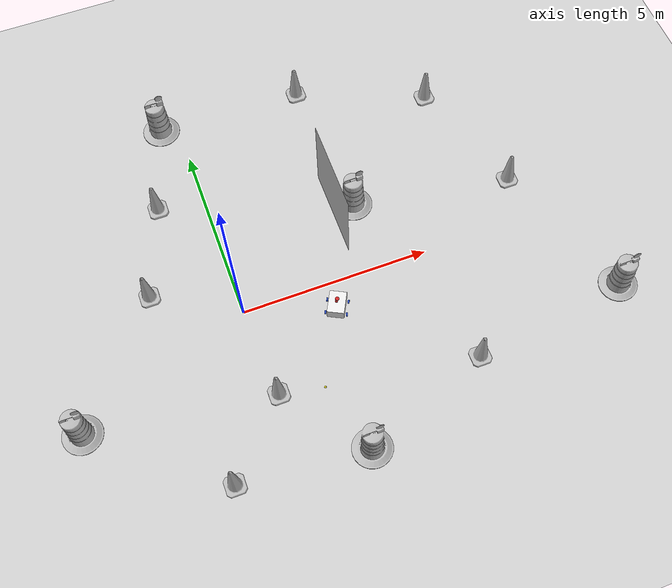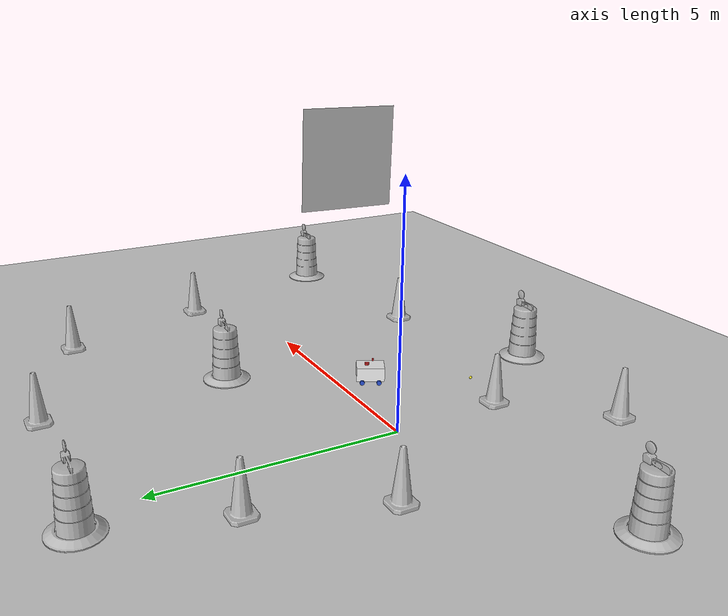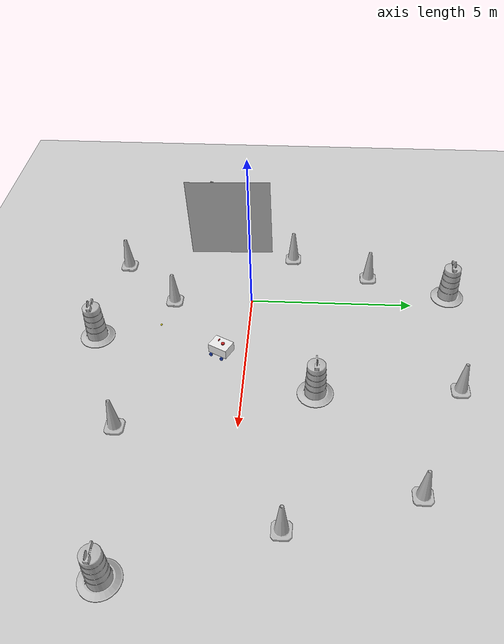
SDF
<sdf version="1.7">
 <world name="default">
  <light name="sun" type="directional">
   <pose>0 0 10 0 -0 0</pose>
   <diffuse>0.8 0.8 0.8 1</diffuse>
   <specular>0.2 0.2 0.2 1</specular>
   <attenuation>
    <range>1000</range>
    <constant>0.9</constant>
    <linear>0.01</linear>
    <quadratic>0.001</quadratic>
   </attenuation>
   <direction>-0.5 0.1 -0.9</direction>
   <spot><inner_angle>0</inner_angle><outer_angle>0</outer_angle><falloff>0</falloff></spot>
  </light>
  <model name="ground_plane">
   <static>1</static>
   <link name="link">
    <collision name="collision">
     <geometry><plane><normal>0 0 1</normal><size>100 100</size></plane></geometry>
     <surface>
      <contact><collide_bitmask>65535</collide_bitmask></contact>
      <friction><ode><mu>100</mu><mu2>50</mu2></ode></friction>
     </surface>
    </collision>
    <visual name="visual">
     <cast_shadows>0</cast_shadows>
     <geometry><plane><normal>0 0 1</normal><size>100 100</size></plane></geometry>
     <material>
      <script><uri>file://media/materials/scripts/gazebo.material</uri><name>Gazebo/Grey</name></script>
     </material>
    </visual>
   </link>
  </model>
  <gravity>0 0 -9.8</gravity>
  <magnetic_field>6e-06 2.3e-05 -4.2e-05</magnetic_field>
  <atmosphere type="adiabatic"/>
  <physics type="ode">
   <max_step_size>0.001</max_step_size>
   <real_time_factor>1</real_time_factor>
   <real_time_update_rate>1000</real_time_update_rate>
  </physics>
  <scene><ambient>0.4 0.4 0.4 1</ambient><background>0.7 0.7 0.7 1</background><shadows>1</shadows></scene>
  <audio><device>default</device></audio>
  <spherical_coordinates>
   <surface_model>EARTH_WGS84</surface_model>
   <latitude_deg>0</latitude_deg>
   <longitude_deg>0</longitude_deg>
   <elevation>0</elevation>
   <heading_deg>0</heading_deg>
  </spherical_coordinates>
  <model name="Construction Cone">
   <link name="link">
    <collision name="collision">
     <geometry>
      <mesh><scale>10 10 10</scale><uri>model://construction_cone/meshes/construction_cone.dae</uri></mesh>
     </geometry>
    </collision>
    <visual name="visual">
     <geometry>
      <mesh><scale>10 10 10</scale><uri>model://construction_cone/meshes/construction_cone.dae</uri></mesh>
     </geometry>
    </visual>
    <inertial>
     <inertia><ixx>1</ixx><ixy>0</ixy><ixz>0</ixz><iyy>1</iyy><iyz>0</iyz><izz>1</izz></inertia>
     <mass>1</mass>
    </inertial>
   </link>
   <pose>0.148573 -2.41951 -1e-05 0 -0 0</pose>
  </model>
  <model name="Construction Barrel">
   <link name="link">
    <inertial>
     <pose>0 0 0.4 0 -0 0</pose>
     <mass>500</mass>
     <inertia><ixx>51.2096</ixx><iyy>51.2096</iyy><izz>25</izz><ixy>0</ixy><ixz>0</ixz><iyz>0</iyz></inertia>
    </inertial>
    <collision name="collision">
     <geometry><mesh><uri>model://construction_barrel/meshes/construction_barrel.dae</uri></mesh></geometry>
    </collision>
    <visual name="visual">
     <geometry><mesh><uri>model://construction_barrel/meshes/construction_barrel.dae</uri></mesh></geometry>
    </visual>
   </link>
   <pose>-0.475907 6.18989 -2e-06 1e-06 8e-06 -3.6e-05</pose>
  </model>
  <model name="Construction Barrel_0">
   <link name="link">
    <inertial>
     <pose>0 0 0.4 0 -0 0</pose>
     <mass>500</mass>
     <inertia><ixx>51.2096</ixx><iyy>51.2096</iyy><izz>25</izz><ixy>0</ixy><ixz>0</ixz><iyz>0</iyz></inertia>
    </inertial>
    <collision name="collision">
     <geometry><mesh><uri>model://construction_barrel/meshes/construction_barrel.dae</uri></mesh></geometry>
    </collision>
    <visual name="visual">
     <geometry><mesh><uri>model://construction_barrel/meshes/construction_barrel.dae</uri></mesh></geometry>
    </visual>
   </link>
   <pose>3.75558 2.03253 -1e-06 -8e-06 -2e-06 -4e-05</pose>
  </model>
  <model name="Construction Cone_0">
   <link name="link">
    <collision name="collision">
     <geometry>
      <mesh><scale>10 10 10</scale><uri>model://construction_cone/meshes/construction_cone.dae</uri></mesh>
     </geometry>
    </collision>
    <visual name="visual">
     <geometry>
      <mesh><scale>10 10 10</scale><uri>model://construction_cone/meshes/construction_cone.dae</uri></mesh>
     </geometry>
    </visual>
    <inertial>
     <inertia><ixx>1</ixx><ixy>0</ixy><ixz>0</ixz><iyy>1</iyy><iyz>0</iyz><izz>1</izz></inertia>
     <mass>1</mass>
    </inertial>
   </link>
   <pose>-1.24255 3.71171 -1e-06 2e-06 2e-06 0</pose>
  </model>
  <model name="Construction Cone_1">
   <link name="link">
    <collision name="collision">
     <geometry>
      <mesh><scale>10 10 10</scale><uri>model://construction_cone/meshes/construction_cone.dae</uri></mesh>
     </geometry>
    </collision>
    <visual name="visual">
     <geometry>
      <mesh><scale>10 10 10</scale><uri>model://construction_cone/meshes/construction_cone.dae</uri></mesh>
     </geometry>
    </visual>
    <inertial>
     <inertia><ixx>1</ixx><ixy>0</ixy><ixz>0</ixz><iyy>1</iyy><iyz>0</iyz><izz>1</izz></inertia>
     <mass>1</mass>
    </inertial>
   </link>
   <pose>-2.1362 1.24693 -2e-06 -3e-06 -1e-06 -0</pose>
  </model>
  <model name="Construction Barrel_1">
   <link name="link">
    <inertial>
     <pose>0 0 0.4 0 -0 0</pose>
     <mass>500</mass>
     <inertia><ixx>51.2096</ixx><iyy>51.2096</iyy><izz>25</izz><ixy>0</ixy><ixz>0</ixz><iyz>0</iyz></inertia>
    </inertial>
    <collision name="collision">
     <geometry><mesh><uri>model://construction_barrel/meshes/construction_barrel.dae</uri></mesh></geometry>
    </collision>
    <visual name="visual">
     <geometry><mesh><uri>model://construction_barrel/meshes/construction_barrel.dae</uri></mesh></geometry>
    </visual>
   </link>
   <pose>-4.59081 -1.72902 -0 0 -0 -4.6e-05</pose>
  </model>
  <model name="Construction Barrel_2">
   <link name="link">
    <inertial>
     <pose>0 0 0.4 0 -0 0</pose>
     <mass>500</mass>
     <inertia><ixx>51.2096</ixx><iyy>51.2096</iyy><izz>25</izz><ixy>0</ixy><ixz>0</ixz><iyz>0</iyz></inertia>
    </inertial>
    <collision name="collision">
     <geometry><mesh><uri>model://construction_barrel/meshes/construction_barrel.dae</uri></mesh></geometry>
    </collision>
    <visual name="visual">
     <geometry><mesh><uri>model://construction_barrel/meshes/construction_barrel.dae</uri></mesh></geometry>
    </visual>
   </link>
   <pose>1.8051 -4.48924 -2e-06 1e-06 8e-06 -3e-05</pose>
  </model>
  <model name="Construction Cone_2">
   <link name="link">
    <collision name="collision">
     <geometry>
      <mesh><scale>10 10 10</scale><uri>model://construction_cone/meshes/construction_cone.dae</uri></mesh>
     </geometry>
    </collision>
    <visual name="visual">
     <geometry>
      <mesh><scale>10 10 10</scale><uri>model://construction_cone/meshes/construction_cone.dae</uri></mesh>
     </geometry>
    </visual>
    <inertial>
     <inertia><ixx>1</ixx><ixy>0</ixy><ixz>0</ixz><iyy>1</iyy><iyz>0</iyz><izz>1</izz></inertia>
     <mass>1</mass>
    </inertial>
   </link>
   <pose>5.16974 -3.24194 -0 2e-06 -2e-06 -0</pose>
  </model>
  <model name="Construction Cone_3">
   <link name="link">
    <collision name="collision">
     <geometry>
      <mesh><scale>10 10 10</scale><uri>model://construction_cone/meshes/construction_cone.dae</uri></mesh>
     </geometry>
    </collision>
    <visual name="visual">
     <geometry>
      <mesh><scale>10 10 10</scale><uri>model://construction_cone/meshes/construction_cone.dae</uri></mesh>
     </geometry>
    </visual>
    <inertial>
     <inertia><ixx>1</ixx><ixy>0</ixy><ixz>0</ixz><iyy>1</iyy><iyz>0</iyz><izz>1</izz></inertia>
     <mass>1</mass>
    </inertial>
   </link>
   <pose>-1.52491 -4.19992 -0 0 -0 0</pose>
  </model>
  <model name="Construction Cone_4">
   <link name="link">
    <collision name="collision">
     <geometry>
      <mesh><scale>10 10 10</scale><uri>model://construction_cone/meshes/construction_cone.dae</uri></mesh>
     </geometry>
    </collision>
    <visual name="visual">
     <geometry>
      <mesh><scale>10 10 10</scale><uri>model://construction_cone/meshes/construction_cone.dae</uri></mesh>
     </geometry>
    </visual>
    <inertial>
     <inertia><ixx>1</ixx><ixy>0</ixy><ixz>0</ixz><iyy>1</iyy><iyz>0</iyz><izz>1</izz></inertia>
     <mass>1</mass>
    </inertial>
   </link>
   <pose>7.97943 1.28747 -0 0 -0 0</pose>
  </model>
  <model name="Construction Barrel_3">
   <link name="link">
    <inertial>
     <pose>0 0 0.4 0 -0 0</pose>
     <mass>500</mass>
     <inertia><ixx>51.2096</ixx><iyy>51.2096</iyy><izz>25</izz><ixy>0</ixy><ixz>0</ixz><iyz>0</iyz></inertia>
    </inertial>
    <collision name="collision">
     <geometry><mesh><uri>model://construction_barrel/meshes/construction_barrel.dae</uri></mesh></geometry>
    </collision>
    <visual name="visual">
     <geometry><mesh><uri>model://construction_barrel/meshes/construction_barrel.dae</uri></mesh></geometry>
    </visual>
   </link>
   <pose>9.33367 -2.64793 -0 0 -0 -4.4e-05</pose>
  </model>
  <model name="Construction Cone_5">
   <link name="link">
    <collision name="collision">
     <geometry>
      <mesh><scale>10 10 10</scale><uri>model://construction_cone/meshes/construction_cone.dae</uri></mesh>
     </geometry>
    </collision>
    <visual name="visual">
     <geometry>
      <mesh><scale>10 10 10</scale><uri>model://construction_cone/meshes/construction_cone.dae</uri></mesh>
     </geometry>
    </visual>
    <inertial>
     <inertia><ixx>1</ixx><ixy>0</ixy><ixz>0</ixz><iyy>1</iyy><iyz>0</iyz><izz>1</izz></inertia>
     <mass>1</mass>
    </inertial>
   </link>
   <pose>3.48835 6.05428 -0 0 -0 0</pose>
  </model>
  <model name="Construction Cone_6">
   <link name="link">
    <collision name="collision">
     <geometry>
      <mesh><scale>10 10 10</scale><uri>model://construction_cone/meshes/construction_cone.dae</uri></mesh>
     </geometry>
    </collision>
    <visual name="visual">
     <geometry>
      <mesh><scale>10 10 10</scale><uri>model://construction_cone/meshes/construction_cone.dae</uri></mesh>
     </geometry>
    </visual>
    <inertial>
     <inertia><ixx>1</ixx><ixy>0</ixy><ixz>0</ixz><iyy>1</iyy><iyz>0</iyz><izz>1</izz></inertia>
     <mass>1</mass>
    </inertial>
   </link>
   <pose>6.90896 4.66228 -0 0 -0 0</pose>
  </model>
  <model name="mybot_2wd">
   <link name="base_link">
    <inertial>
     <pose>-0.002222 0 0.16619 0 -0 0</pose>
     <mass>3.15</mass>
     <inertia>
      <ixx>0.0738743</ixx>
      <ixy>0</ixy>
      <ixz>0.00114667</ixz>
      <iyy>0.115949</iyy>
      <iyz>0</iyz>
      <izz>0.139007</izz>
     </inertia>
    </inertial>
    <collision name="base_link_fixed_joint_lump__chassis_collision">
     <pose>0 0 0.16 0 -0 0</pose>
     <geometry><box><size>0.6 0.44 0.3</size></box></geometry>
    </collision>
    <collision name="base_link_fixed_joint_lump__imu_link_collision_1">
     <pose>0 0 0.21 0 -0 0</pose>
     <geometry><box><size>0.03 0.03 0.01</size></box></geometry>
    </collision>
    <collision name="base_link_fixed_joint_lump__laser_frame_collision_2">
     <pose>-0.07 0 0.33 0 -0 0</pose>
     <geometry><cylinder><length>0.04</length><radius>0.05</radius></cylinder></geometry>
    </collision>
    <visual name="base_link_fixed_joint_lump__chassis_visual">
     <pose>0 0 0.16 0 -0 0</pose>
     <geometry><box><size>0.6 0.44 0.3</size></box></geometry>
     <material>
      <script><name>Gazebo/White</name><uri>file://media/materials/scripts/gazebo.material</uri></script>
     </material>
    </visual>
    <visual name="base_link_fixed_joint_lump__camera_link_visual_1">
     <pose>0.05 0 0.43 0 0.11 0</pose>
     <geometry><box><size>0.03 0.07 0.035</size></box></geometry>
     <material>
      <script><name>Gazebo/Red</name><uri>file://media/materials/scripts/gazebo.material</uri></script>
     </material>
    </visual>
    <visual name="base_link_fixed_joint_lump__imu_link_visual_2">
     <pose>0 0 0.21 0 -0 0</pose>
     <geometry><box><size>0.03 0.03 0.01</size></box></geometry>
     <material>
      <script><name>Gazebo/Blue</name><uri>file://media/materials/scripts/gazebo.material</uri></script>
     </material>
    </visual>
    <visual name="base_link_fixed_joint_lump__laser_frame_visual_3">
     <pose>-0.07 0 0.33 0 -0 0</pose>
     <geometry><cylinder><length>0.04</length><radius>0.05</radius></cylinder></geometry>
     <material>
      <script><name>Gazebo/Red</name><uri>file://media/materials/scripts/gazebo.material</uri></script>
     </material>
    </visual>
    <sensor name="camera" type="camera">
     <visualize>1</visualize>
     <update_rate>10</update_rate>
     <camera>
      <horizontal_fov>1.047</horizontal_fov>
      <image><format>R8G8B8</format><width>640</width><height>480</height></image>
      <clip><near>0.1</near><far>10</far></clip>
     </camera>
     <plugin name="camera_controller" filename="libgazebo_ros_camera.so">
      <frame_name>camera_link_optical</frame_name>
     </plugin>
     <pose>0.05 0 0.43 0 0.11 0</pose>
    </sensor>
    <sensor name="imu_sensor" type="imu">
     <always_on>1</always_on>
     <update_rate>50</update_rate>
     <visualize>0</visualize>
     <plugin name="imu_plugin" filename="libgazebo_ros_imu_sensor.so">
      <ros><argument>~/out:=imu/data</argument></ros>
      <output_type>sensor_msgs/Imu</output_type>
      <frame_name>imu_link</frame_name>
     </plugin>
     <pose>0 0 0.21 0 -0 0</pose>
    </sensor>
    <sensor name="laser" type="ray">
     <visualize>0</visualize>
     <update_rate>10</update_rate>
     <ray>
      <scan>
       <horizontal>
        <samples>360</samples>
        <resolution>1</resolution>
        <min_angle>-3.14</min_angle>
        <max_angle>3.14</max_angle>
       </horizontal>
       <vertical><samples>1</samples><min_angle>0</min_angle><max_angle>0</max_angle></vertical>
      </scan>
      <range><min>0.3</min><max>12</max><resolution>0.01</resolution></range>
     </ray>
     <plugin name="laser_controller" filename="libgazebo_ros_ray_sensor.so">
      <ros><argument>~/out:=scan</argument></ros>
      <output_type>sensor_msgs/LaserScan</output_type>
      <frame_name>laser_frame</frame_name>
     </plugin>
     <pose>-0.07 0 0.33 0 -0 0</pose>
    </sensor>
   </link>
   <joint name="left_front_wheel_joint" type="revolute">
    <pose relative_to="base_link">0.18 0.275 0 -1.5707 0 0</pose>
    <parent>base_link</parent>
    <child>left_front_wheel</child>
    <axis>
     <xyz>0 0 1</xyz>
     <limit><lower>-1e+16</lower><upper>1e+16</upper></limit>
     <dynamics><spring_reference>0</spring_reference><spring_stiffness>0</spring_stiffness></dynamics>
    </axis>
   </joint>
   <link name="left_front_wheel">
    <pose relative_to="left_front_wheel_joint">0 0 0 0 -0 0</pose>
    <inertial>
     <mass>0.2</mass>
     <inertia>
      <ixx>0.000151667</ixx>
      <ixy>0</ixy>
      <ixz>0</ixz>
      <iyy>0.000151667</iyy>
      <iyz>0</iyz>
      <izz>0.00025</izz>
     </inertia>
    </inertial>
    <collision name="left_front_wheel_collision">
     <geometry><cylinder><length>0.04</length><radius>0.05</radius></cylinder></geometry>
    </collision>
    <visual name="left_front_wheel_visual">
     <geometry><cylinder><length>0.04</length><radius>0.05</radius></cylinder></geometry>
     <material>
      <script><name>Gazebo/Blue</name><uri>file://media/materials/scripts/gazebo.material</uri></script>
     </material>
    </visual>
   </link>
   <joint name="left_rear_wheel_joint" type="revolute">
    <pose relative_to="base_link">-0.18 0.275 0 -1.5707 0 0</pose>
    <parent>base_link</parent>
    <child>left_rear_wheel</child>
    <axis>
     <xyz>0 0 1</xyz>
     <limit><lower>-1e+16</lower><upper>1e+16</upper></limit>
     <dynamics><spring_reference>0</spring_reference><spring_stiffness>0</spring_stiffness></dynamics>
    </axis>
   </joint>
   <link name="left_rear_wheel">
    <pose relative_to="left_rear_wheel_joint">0 0 0 0 -0 0</pose>
    <inertial>
     <mass>0.2</mass>
     <inertia>
      <ixx>0.000151667</ixx>
      <ixy>0</ixy>
      <ixz>0</ixz>
      <iyy>0.000151667</iyy>
      <iyz>0</iyz>
      <izz>0.00025</izz>
     </inertia>
    </inertial>
    <collision name="left_rear_wheel_collision">
     <geometry><cylinder><length>0.04</length><radius>0.05</radius></cylinder></geometry>
     <surface><friction><ode><mu>0.001</mu><mu2>0.001</mu2></ode></friction></surface>
    </collision>
    <visual name="left_rear_wheel_visual">
     <geometry><cylinder><length>0.04</length><radius>0.05</radius></cylinder></geometry>
     <material>
      <script><name>Gazebo/Blue</name><uri>file://media/materials/scripts/gazebo.material</uri></script>
     </material>
    </visual>
   </link>
   <joint name="right_front_wheel_joint" type="revolute">
    <pose relative_to="base_link">0.18 -0.275 0 1.5707 -0 0</pose>
    <parent>base_link</parent>
    <child>right_front_wheel</child>
    <axis>
     <xyz>0 0 -1</xyz>
     <limit><lower>-1e+16</lower><upper>1e+16</upper></limit>
     <dynamics><spring_reference>0</spring_reference><spring_stiffness>0</spring_stiffness></dynamics>
    </axis>
   </joint>
   <link name="right_front_wheel">
    <pose relative_to="right_front_wheel_joint">0 0 0 0 -0 0</pose>
    <inertial>
     <mass>0.2</mass>
     <inertia>
      <ixx>0.000151667</ixx>
      <ixy>0</ixy>
      <ixz>0</ixz>
      <iyy>0.000151667</iyy>
      <iyz>0</iyz>
      <izz>0.00025</izz>
     </inertia>
    </inertial>
    <collision name="right_front_wheel_collision">
     <geometry><cylinder><length>0.04</length><radius>0.05</radius></cylinder></geometry>
    </collision>
    <visual name="right_front_wheel_visual">
     <geometry><cylinder><length>0.04</length><radius>0.05</radius></cylinder></geometry>
     <material>
      <script><name>Gazebo/Blue</name><uri>file://media/materials/scripts/gazebo.material</uri></script>
     </material>
    </visual>
   </link>
   <joint name="right_rear_wheel_joint" type="revolute">
    <pose relative_to="base_link">-0.18 -0.275 0 1.5707 -0 0</pose>
    <parent>base_link</parent>
    <child>right_rear_wheel</child>
    <axis>
     <xyz>0 0 -1</xyz>
     <limit><lower>-1e+16</lower><upper>1e+16</upper></limit>
     <dynamics><spring_reference>0</spring_reference><spring_stiffness>0</spring_stiffness></dynamics>
    </axis>
   </joint>
   <link name="right_rear_wheel">
    <pose relative_to="right_rear_wheel_joint">0 0 0 0 -0 0</pose>
    <inertial>
     <mass>0.2</mass>
     <inertia>
      <ixx>0.000151667</ixx>
      <ixy>0</ixy>
      <ixz>0</ixz>
      <iyy>0.000151667</iyy>
      <iyz>0</iyz>
      <izz>0.00025</izz>
     </inertia>
    </inertial>
    <collision name="right_rear_wheel_collision">
     <geometry><cylinder><length>0.04</length><radius>0.05</radius></cylinder></geometry>
     <surface><friction><ode><mu>0.001</mu><mu2>0.001</mu2></ode></friction></surface>
    </collision>
    <visual name="right_rear_wheel_visual">
     <geometry><cylinder><length>0.04</length><radius>0.05</radius></cylinder></geometry>
     <material>
      <script><name>Gazebo/Blue</name><uri>file://media/materials/scripts/gazebo.material</uri></script>
     </material>
    </visual>
   </link>
   <static>0</static>
   <plugin name="gazebo_ros2_control" filename="libgazebo_ros2_control.so">
    <parameters>/home/gizmoros2/ros2_ws/install/mybot_2wd/share/mybot_2wd/config/my_controllers.yaml</parameters>
    <parameters>/home/gizmoros2/ros2_ws/install/mybot_2wd/share/mybot_2wd/config/gaz_ros2_ctl_use_sim.yaml</parameters>
   </plugin>
   <pose>2.28379 -0.719916 0.050001 0 5e-06 -2.04981</pose>
  </model>
  <model name="spectrum_plane">
   <static>1</static>
   <link name="link">
    <visual name="visual">
     <geometry><mesh><uri>model://spectrum_plane/meshes/spectrum_plane.dae</uri></mesh></geometry>
    </visual>
   </link>
   <pose>2.46508 -0.218253 4.83679 -1.57129 -0.023159 1.57081</pose>
  </model>
  <model name="tennis_ball">
   <link name="link">
    <inertial>
     <mass>1</mass>
     <inertia><ixx>0.1</ixx><ixy>0</ixy><ixz>0</ixz><iyy>0.1</iyy><iyz>0</iyz><izz>0.1</izz></inertia>
    </inertial>
    <visual name="visual">
     <geometry><sphere><radius>0.03</radius></sphere></geometry>
     <material>
      <script><name>Gazebo/Yellow</name><uri>file://media/materials/scripts/gazebo.material</uri></script>
      <shader type="pixel"><normal_map>__default__</normal_map></shader>
      <ambient>1 1 0 1</ambient>
      <diffuse>1 1 0 1</diffuse>
      <emissive>0 0 0 1</emissive>
     </material>
    </visual>
    <collision name="collision">
     <geometry><sphere><radius>0.003</radius></sphere></geometry>
     <surface>
      <friction>
       <ode><mu>1</mu><mu2>1</mu2><fdir1>0 0 0</fdir1><slip1>0</slip1><slip2>0</slip2></ode>
       <torsional>
        <coefficient>1</coefficient>
        <patch_radius>0</patch_radius>
        <surface_radius>0</surface_radius>
        <use_patch_radius>1</use_patch_radius>
        <ode><slip>0</slip></ode>
       </torsional>
      </friction>
      <bounce><restitution_coefficient>0</restitution_coefficient><threshold>1e+06</threshold></bounce>
      <contact>
       <collide_without_contact>0</collide_without_contact>
       <collide_without_contact_bitmask>1</collide_without_contact_bitmask>
       <collide_bitmask>1</collide_bitmask>
       <ode>
        <soft_cfm>0</soft_cfm>
        <soft_erp>0.2</soft_erp>
        <kp>1e+13</kp>
        <kd>1</kd>
        <max_vel>0.01</max_vel>
        <min_depth>0</min_depth>
       </ode>
       <bullet>
        <split_impulse>1</split_impulse>
        <split_impulse_penetration_threshold>-0.01</split_impulse_penetration_threshold>
        <soft_cfm>0</soft_cfm>
        <soft_erp>0.2</soft_erp>
        <kp>1e+13</kp>
        <kd>1</kd>
       </bullet>
      </contact>
     </surface>
    </collision>
   </link>
   <static>0</static>
   <pose>1.27381 -2.65655 0.0568 1.31773 0.821935 -0.773891</pose>
  </model>
 </world>
</sdf>
